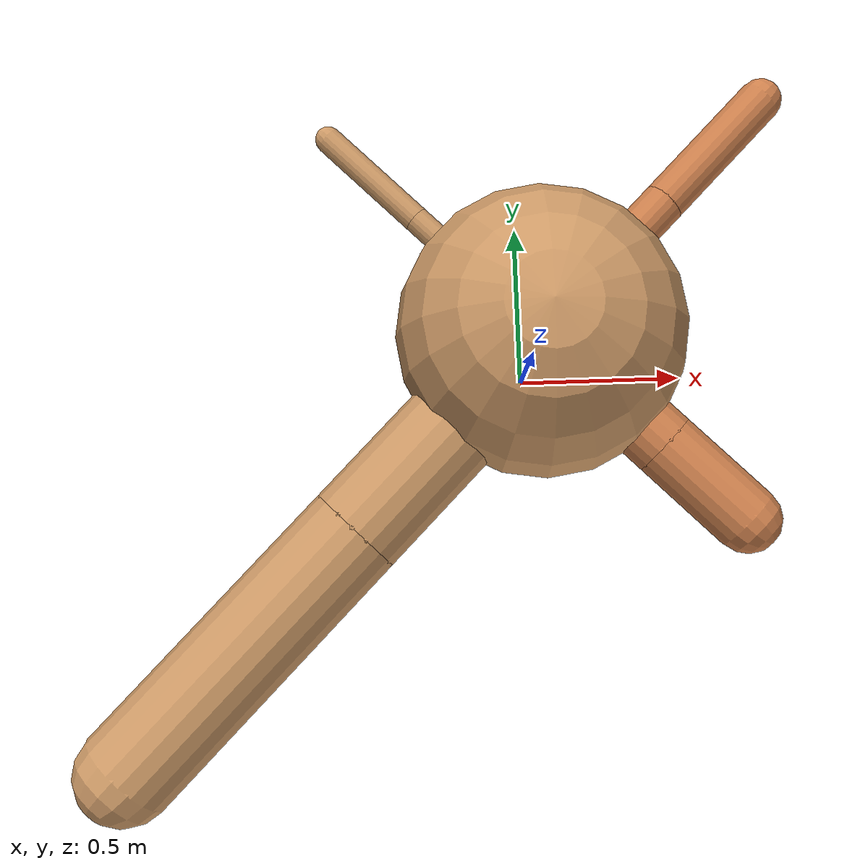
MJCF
<?xml version="1.0" ?>
<mujoco model="ant">

	<compiler angle="degree" coordinate="local" inertiafromgeom="true"/>

	<option integrator="RK4" timestep="0.01"/>

	<custom>

		<numeric data="0.0 0.0 0.55 1.0 0.0 0.0 0.0 0.0 1.0 0.0 -1.0 0.0 -1.0 0.0 1.0" name="init_qpos"/>

	</custom>

	<default>

		<joint armature="1" damping="1" limited="true"/>

		<geom conaffinity="0" condim="3" density="5.0" friction="1.5 0.1 0.1" margin="0.01" rgba="0.8 0.6 0.4 1"/>

	</default>

	<worldbody>

		<body name="torso" pos="0 0 0.75">

			<geom name="torso_geom" pos="0 0 0" size="0.37421860626120607" type="sphere"/>

			<!--joint armature="0" damping="0" limited="false" margin="0.01" name="root" pos="0 0 0" type="free"/-->

			<body name="front_left_leg" pos="0 0 0">

				<geom fromto="0 0 0 0.2 0.2 0" name="aux_1_geom" size="0.05641355007620037" type="capsule" rgba=".8 .5 .3 1"/>

				<body name="aux_1" pos="0.2 0.2 0">

					<joint axis="0 0 1" name="hip_1" pos="0.0 0.0 0.0" range="-40 40" type="hinge"/>

					<geom fromto="0 0 0 0.13361340137437225 0.13361340137437225 0" name="left_leg_geom" size="0.05641355007620037" type="capsule" rgba=".8 .5 .3 1"/>

					<body pos="0.13361340137437225 0.13361340137437225 0" name="front_left_foot">

						<joint axis="-1 1 0" name="ankle_1" pos="0.0 0.0 0.0" range="30 100" type="hinge"/>

						<geom fromto="0 0 0 0.2672268027487445 0.2672268027487445 0" name="left_ankle_geom" size="0.05641355007620037" type="capsule" rgba=".8 .5 .3 1"/>

					</body>

				</body>

			</body>

			<body name="front_right_leg" pos="0 0 0">

				<geom fromto="0 0 0 -0.2 0.2 0" name="aux_2_geom" size="0.03452179470986298" type="capsule"/>

				<body name="aux_2" pos="-0.2 0.2 0">

					<joint axis="0 0 1" name="hip_2" pos="0.0 0.0 0.0" range="-40 40" type="hinge"/>

					<geom fromto="0 0 0 -0.11089057509406396 0.11089057509406396 0" name="right_leg_geom" size="0.03452179470986298" type="capsule"/>

					<body pos="-0.11089057509406396 0.11089057509406396 0" name="front_right_foot">

						<joint axis="1 1 0" name="ankle_2" pos="0.0 0.0 0.0" range="-100 -30" type="hinge"/>

						<geom fromto="0 0 0 -0.2217811501881279 0.2217811501881279 0" name="right_ankle_geom" size="0.03452179470986298" type="capsule"/>

					</body>

				</body>

			</body>

			<body name="left_back_leg" pos="0 0 0">

				<geom fromto="0 0 0 -0.2 -0.2 0" name="aux_3_geom" size="0.1282034039763409" type="capsule"/>

				<body name="aux_3" pos="-0.2 -0.2 0">

					<joint axis="0 0 1" name="hip_3" pos="0.0 0.0 0.0" range="-40 40" type="hinge"/>

					<geom fromto="0 0 0 -0.2886353057644711 -0.2886353057644711 0" name="back_leg_geom" size="0.1282034039763409" type="capsule"/>

					<body pos="-0.2886353057644711 -0.2886353057644711 0" name="left_back_foot">

						<joint axis="-1 1 0" name="ankle_3" pos="0.0 0.0 0.0" range="-100 -30" type="hinge"/>

						<geom fromto="0 0 0 -0.5772706115289422 -0.5772706115289422 0" name="third_ankle_geom" size="0.1282034039763409" type="capsule"/>

					</body>

				</body>

			</body>

			<body name="right_back_leg" pos="0 0 0">

				<geom fromto="0 0 0 0.2 -0.2 0" name="aux_4_geom" size="0.08713920999711239" type="capsule" rgba=".8 .5 .3 1"/>

				<body name="aux_4" pos="0.2 -0.2 0">

					<joint axis="0 0 1" name="hip_4" pos="0.0 0.0 0.0" range="-40 40" type="hinge"/>

					<geom fromto="0 0 0 0.09831265949065691 -0.09831265949065691 0" name="rightback_leg_geom" size="0.08713920999711239" type="capsule" rgba=".8 .5 .3 1"/>

					<body pos="0.09831265949065691 -0.09831265949065691 0" name="right_back_foot">

						<joint axis="1 1 0" name="ankle_4" pos="0.0 0.0 0.0" range="30 100" type="hinge"/>

						<geom fromto="0 0 0 0.19662531898131383 -0.19662531898131383 0" name="fourth_ankle_geom" size="0.08713920999711239" type="capsule" rgba=".8 .5 .3 1"/>

					</body>

				</body>

			</body>

		</body>

	</worldbody>

	<actuator>

		<motor ctrllimited="true" ctrlrange="-1.0 1.0" joint="hip_4" gear="150"/>

		<motor ctrllimited="true" ctrlrange="-1.0 1.0" joint="ankle_4" gear="150"/>

		<motor ctrllimited="true" ctrlrange="-1.0 1.0" joint="hip_1" gear="150"/>

		<motor ctrllimited="true" ctrlrange="-1.0 1.0" joint="ankle_1" gear="150"/>

		<motor ctrllimited="true" ctrlrange="-1.0 1.0" joint="hip_2" gear="150"/>

		<motor ctrllimited="true" ctrlrange="-1.0 1.0" joint="ankle_2" gear="150"/>

		<motor ctrllimited="true" ctrlrange="-1.0 1.0" joint="hip_3" gear="150"/>

		<motor ctrllimited="true" ctrlrange="-1.0 1.0" joint="ankle_3" gear="150"/>

	</actuator>

</mujoco>
